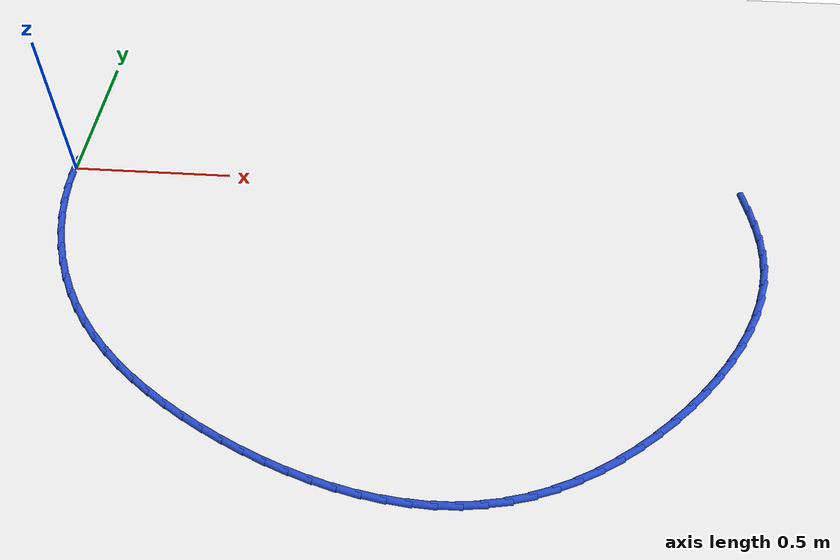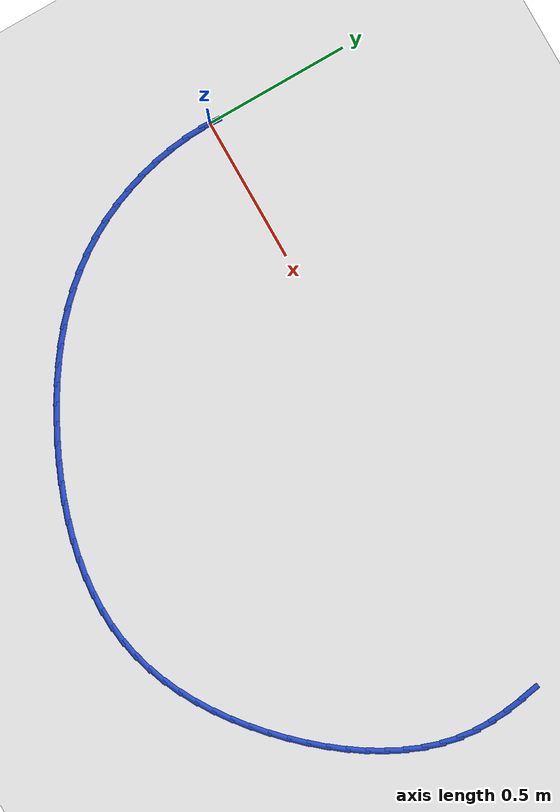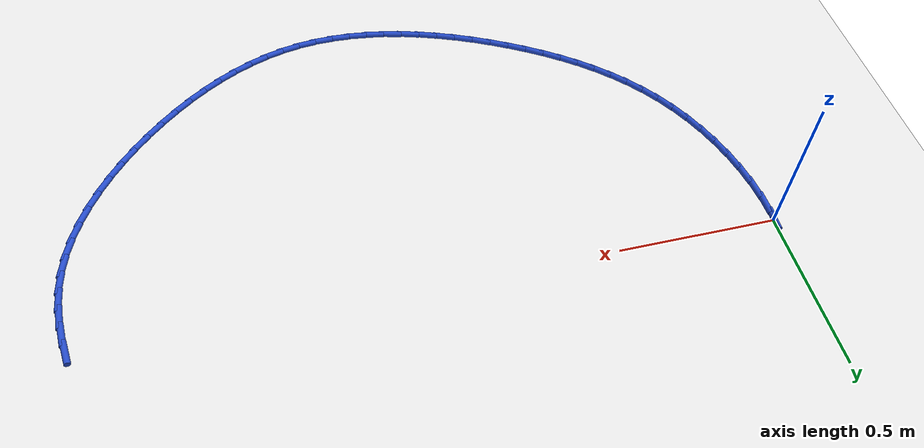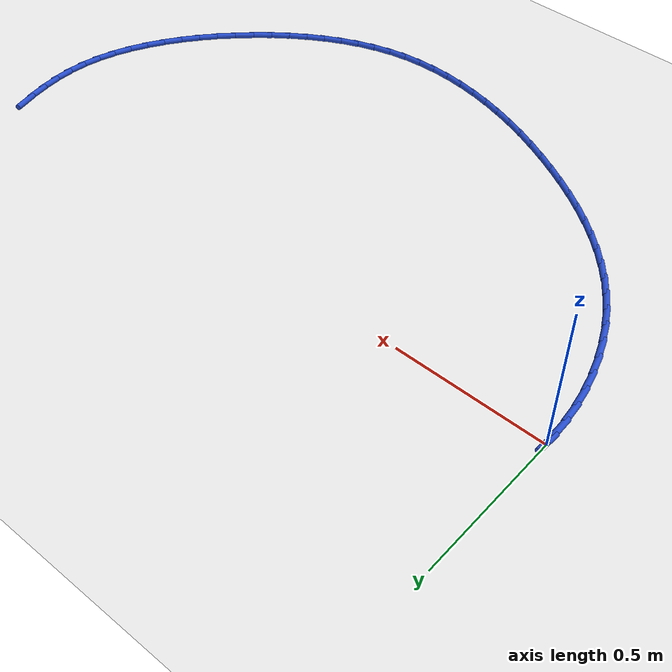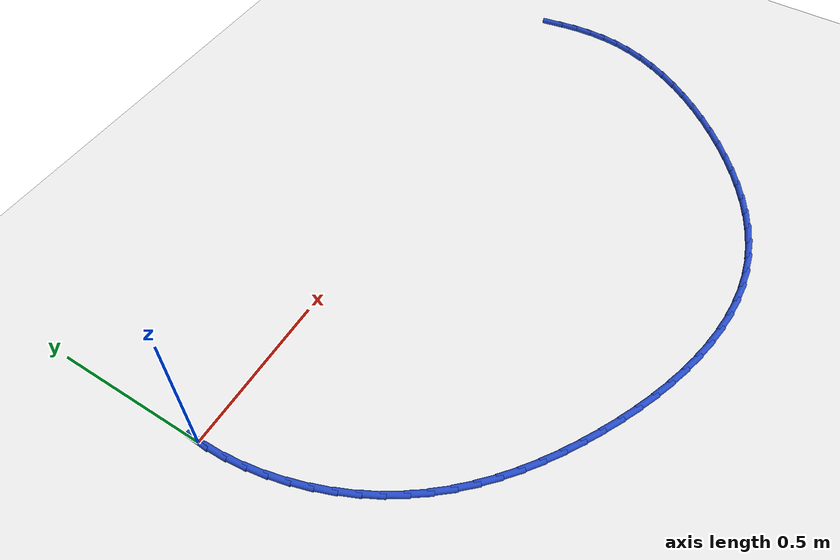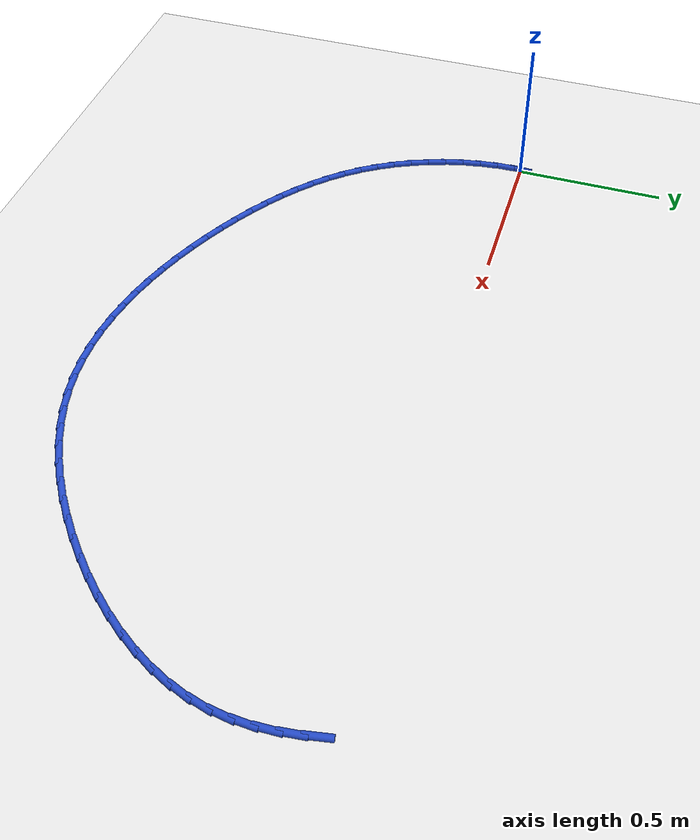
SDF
<sdf version="1.6">
 <world name="default">
  <model name="ground_plane">
   <static>1</static>
   <link name="link">
    <collision name="collision">
     <geometry><plane><normal>0 0 1</normal><size>100 100</size></plane></geometry>
     <surface><friction><ode><mu>100</mu><mu2>50</mu2></ode></friction></surface>
    </collision>
    <visual name="visual">
     <cast_shadows>0</cast_shadows>
     <geometry><plane><normal>0 0 1</normal><size>100 100</size></plane></geometry>
     <material>
      <script><uri>file://media/materials/scripts/gazebo.material</uri><name>Gazebo/WhiteGlow</name></script>
     </material>
    </visual>
   </link>
  </model>
  <model name="line">
   <link name="link_0">
    <pose>-4.163336342344337e-17 -9.71445146547012e-17 0.01 0 1.57 1.5214863195280521</pose>
    <collision name="collision">
     <geometry><cylinder><radius>0.01</radius><length>0.08</length></cylinder></geometry>
    </collision>
    <visual name="visual">
     <material>
      <script><name>Gazebo/Blue</name><uri>file://media/materials/scripts/gazebo.material</uri></script>
     </material>
     <geometry><cylinder><radius>0.01</radius><length>0.08</length></cylinder></geometry>
    </visual>
   </link>
   <link name="link_56">
    <pose>2.1243279045903054 -0.02235279379058367 0.01 0 1.57 -1.3953828920066031</pose>
    <collision name="collision">
     <geometry><cylinder><radius>0.01</radius><length>0.08</length></cylinder></geometry>
    </collision>
    <visual name="visual">
     <material>
      <script><name>Gazebo/Blue</name><uri>file://media/materials/scripts/gazebo.material</uri></script>
     </material>
     <geometry><cylinder><radius>0.01</radius><length>0.08</length></cylinder></geometry>
    </visual>
   </link>
   <link name="link_57">
    <pose>2.1348627377969445 -0.08179270551286004 0.01 0 1.57 -1.4587029891030252</pose>
    <collision name="collision">
     <geometry><cylinder><radius>0.01</radius><length>0.08</length></cylinder></geometry>
    </collision>
    <visual name="visual">
     <material>
      <script><name>Gazebo/Blue</name><uri>file://media/materials/scripts/gazebo.material</uri></script>
     </material>
     <geometry><cylinder><radius>0.01</radius><length>0.08</length></cylinder></geometry>
    </visual>
   </link>
   <link name="link_58">
    <pose>2.1415077284583637 -0.14082508161987517 0.01 0 1.57 -1.5339866785847238</pose>
    <collision name="collision">
     <geometry><cylinder><radius>0.01</radius><length>0.08</length></cylinder></geometry>
    </collision>
    <visual name="visual">
     <material>
      <script><name>Gazebo/Blue</name><uri>file://media/materials/scripts/gazebo.material</uri></script>
     </material>
     <geometry><cylinder><radius>0.01</radius><length>0.08</length></cylinder></geometry>
    </visual>
   </link>
   <link name="link_59">
    <pose>2.1436676674122017 -0.19947718600310327 0.01 0 1.57 1.5207460998094156</pose>
    <collision name="collision">
     <geometry><cylinder><radius>0.01</radius><length>0.08</length></cylinder></geometry>
    </collision>
    <visual name="visual">
     <material>
      <script><name>Gazebo/Blue</name><uri>file://media/materials/scripts/gazebo.material</uri></script>
     </material>
     <geometry><cylinder><radius>0.01</radius><length>0.08</length></cylinder></geometry>
    </visual>
   </link>
   <link name="link_60">
    <pose>2.140747345496099 -0.2577762825540158 0.01 0 1.57 1.4237009385239683</pose>
    <collision name="collision">
     <geometry><cylinder><radius>0.01</radius><length>0.08</length></cylinder></geometry>
    </collision>
    <visual name="visual">
     <material>
      <script><name>Gazebo/Blue</name><uri>file://media/materials/scripts/gazebo.material</uri></script>
     </material>
     <geometry><cylinder><radius>0.01</radius><length>0.08</length></cylinder></geometry>
    </visual>
   </link>
   <link name="link_61">
    <pose>2.1321579112309026 -0.315748152401936 0.01 0 1.57 1.3247202988558018</pose>
    <collision name="collision">
     <geometry><cylinder><radius>0.01</radius><length>0.08</length></cylinder></geometry>
    </collision>
    <visual name="visual">
     <material>
      <script><name>Gazebo/Blue</name><uri>file://media/materials/scripts/gazebo.material</uri></script>
     </material>
     <geometry><cylinder><radius>0.01</radius><length>0.08</length></cylinder></geometry>
    </visual>
   </link>
   <link name="link_62">
    <pose>2.1176956036454815 -0.3733287644581993 0.01 0 1.57 1.2341998890114867</pose>
    <collision name="collision">
     <geometry><cylinder><radius>0.01</radius><length>0.08</length></cylinder></geometry>
    </collision>
    <visual name="visual">
     <material>
      <script><name>Gazebo/Blue</name><uri>file://media/materials/scripts/gazebo.material</uri></script>
     </material>
     <geometry><cylinder><radius>0.01</radius><length>0.08</length></cylinder></geometry>
    </visual>
   </link>
   <link name="link_63">
    <pose>2.097755648434597 -0.4303143897712099 0.01 0 1.57 1.1525123572392821</pose>
    <collision name="collision">
     <geometry><cylinder><radius>0.01</radius><length>0.08</length></cylinder></geometry>
    </collision>
    <visual name="visual">
     <material>
      <script><name>Gazebo/Blue</name><uri>file://media/materials/scripts/gazebo.material</uri></script>
     </material>
     <geometry><cylinder><radius>0.01</radius><length>0.08</length></cylinder></geometry>
    </visual>
   </link>
   <link name="link_64">
    <pose>2.072785042827551 -0.48648922504256364 0.01 0 1.57 1.0788384101998991</pose>
    <collision name="collision">
     <geometry><cylinder><radius>0.01</radius><length>0.08</length></cylinder></geometry>
    </collision>
    <visual name="visual">
     <material>
      <script><name>Gazebo/Blue</name><uri>file://media/materials/scripts/gazebo.material</uri></script>
     </material>
     <geometry><cylinder><radius>0.01</radius><length>0.08</length></cylinder></geometry>
    </visual>
   </link>
   <link name="link_65">
    <pose>2.0432307840536406 -0.5416374669738587 0.01 0 1.57 1.0122001943229748</pose>
    <collision name="collision">
     <geometry><cylinder><radius>0.01</radius><length>0.08</length></cylinder></geometry>
    </collision>
    <visual name="visual">
     <material>
      <script><name>Gazebo/Blue</name><uri>file://media/materials/scripts/gazebo.material</uri></script>
     </material>
     <geometry><cylinder><radius>0.01</radius><length>0.08</length></cylinder></geometry>
    </visual>
   </link>
   <link name="link_66">
    <pose>2.009539869342166 -0.595543312266693 0.01 0 1.57 0.9515832576468713</pose>
    <collision name="collision">
     <geometry><cylinder><radius>0.01</radius><length>0.08</length></cylinder></geometry>
    </collision>
    <visual name="visual">
     <material>
      <script><name>Gazebo/Blue</name><uri>file://media/materials/scripts/gazebo.material</uri></script>
     </material>
     <geometry><cylinder><radius>0.01</radius><length>0.08</length></cylinder></geometry>
    </visual>
   </link>
   <link name="link_67">
    <pose>1.9721592959224274 -0.6479909576226626 0.01 0 1.57 0.8960034920960782</pose>
    <collision name="collision">
     <geometry><cylinder><radius>0.01</radius><length>0.08</length></cylinder></geometry>
    </collision>
    <visual name="visual">
     <material>
      <script><name>Gazebo/Blue</name><uri>file://media/materials/scripts/gazebo.material</uri></script>
     </material>
     <geometry><cylinder><radius>0.01</radius><length>0.08</length></cylinder></geometry>
    </visual>
   </link>
   <link name="link_68">
    <pose>1.9315360610237233 -0.6987645997433658 0.01 0 1.57 0.844535784874697</pose>
    <collision name="collision">
     <geometry><cylinder><radius>0.01</radius><length>0.08</length></cylinder></geometry>
    </collision>
    <visual name="visual">
     <material>
      <script><name>Gazebo/Blue</name><uri>file://media/materials/scripts/gazebo.material</uri></script>
     </material>
     <geometry><cylinder><radius>0.01</radius><length>0.08</length></cylinder></geometry>
    </visual>
   </link>
   <link name="link_69">
    <pose>1.8881171618753547 -0.7476484353303994 0.01 0 1.57 0.7963183726350038</pose>
    <collision name="collision">
     <geometry><cylinder><radius>0.01</radius><length>0.08</length></cylinder></geometry>
    </collision>
    <visual name="visual">
     <material>
      <script><name>Gazebo/Blue</name><uri>file://media/materials/scripts/gazebo.material</uri></script>
     </material>
     <geometry><cylinder><radius>0.01</radius><length>0.08</length></cylinder></geometry>
    </visual>
   </link>
   <link name="link_70">
    <pose>1.8423495957066196 -0.7944266610853612 0.01 0 1.57 0.7502204640533922</pose>
    <collision name="collision">
     <geometry><cylinder><radius>0.01</radius><length>0.08</length></cylinder></geometry>
    </collision>
    <visual name="visual">
     <material>
      <script><name>Gazebo/Blue</name><uri>file://media/materials/scripts/gazebo.material</uri></script>
     </material>
     <geometry><cylinder><radius>0.01</radius><length>0.08</length></cylinder></geometry>
    </visual>
   </link>
   <link name="link_71">
    <pose>1.7946560240762262 -0.8388774677604266 0.01 0 1.57 0.7027018645227558</pose>
    <collision name="collision">
     <geometry><cylinder><radius>0.01</radius><length>0.08</length></cylinder></geometry>
    </collision>
    <visual name="visual">
     <material>
      <script><name>Gazebo/Blue</name><uri>file://media/materials/scripts/gazebo.material</uri></script>
     </material>
     <geometry><cylinder><radius>0.01</radius><length>0.08</length></cylinder></geometry>
    </visual>
   </link>
   <link name="link_72">
    <pose>1.7452434732153075 -0.8807258281425704 0.01 0 1.57 0.6517905637498506</pose>
    <collision name="collision">
     <geometry><cylinder><radius>0.01</radius><length>0.08</length></cylinder></geometry>
    </collision>
    <visual name="visual">
     <material>
      <script><name>Gazebo/Blue</name><uri>file://media/materials/scripts/gazebo.material</uri></script>
     </material>
     <geometry><cylinder><radius>0.01</radius><length>0.08</length></cylinder></geometry>
    </visual>
   </link>
   <link name="link_73">
    <pose>1.6942062976735612 -0.9196689080833738 0.01 0 1.57 0.597023054765728</pose>
    <collision name="collision">
     <geometry><cylinder><radius>0.01</radius><length>0.08</length></cylinder></geometry>
    </collision>
    <visual name="visual">
     <material>
      <script><name>Gazebo/Blue</name><uri>file://media/materials/scripts/gazebo.material</uri></script>
     </material>
     <geometry><cylinder><radius>0.01</radius><length>0.08</length></cylinder></geometry>
    </visual>
   </link>
   <link name="link_74">
    <pose>1.6416378706844752 -0.9554036312493726 0.01 0 1.57 0.5379584692858022</pose>
    <collision name="collision">
     <geometry><cylinder><radius>0.01</radius><length>0.08</length></cylinder></geometry>
    </collision>
    <visual name="visual">
     <material>
      <script><name>Gazebo/Blue</name><uri>file://media/materials/scripts/gazebo.material</uri></script>
     </material>
     <geometry><cylinder><radius>0.01</radius><length>0.08</length></cylinder></geometry>
    </visual>
   </link>
   <link name="link_75">
    <pose>1.5876315654815403 -0.9876269213071013 0.01 0 1.57 0.47419100969769523</pose>
    <collision name="collision">
     <geometry><cylinder><radius>0.01</radius><length>0.08</length></cylinder></geometry>
    </collision>
    <visual name="visual">
     <material>
      <script><name>Gazebo/Blue</name><uri>file://media/materials/scripts/gazebo.material</uri></script>
     </material>
     <geometry><cylinder><radius>0.01</radius><length>0.08</length></cylinder></geometry>
    </visual>
   </link>
   <link name="link_76">
    <pose>1.532280755298245 -1.0160357019230966 0.01 0 1.57 0.40538751093271314</pose>
    <collision name="collision">
     <geometry><cylinder><radius>0.01</radius><length>0.08</length></cylinder></geometry>
    </collision>
    <visual name="visual">
     <material>
      <script><name>Gazebo/Blue</name><uri>file://media/materials/scripts/gazebo.material</uri></script>
     </material>
     <geometry><cylinder><radius>0.01</radius><length>0.08</length></cylinder></geometry>
    </visual>
   </link>
   <link name="link_77">
    <pose>1.4756788133680805 -1.0403268967638937 0.01 0 1.57 0.3313381522095739</pose>
    <collision name="collision">
     <geometry><cylinder><radius>0.01</radius><length>0.08</length></cylinder></geometry>
    </collision>
    <visual name="visual">
     <material>
      <script><name>Gazebo/Blue</name><uri>file://media/materials/scripts/gazebo.material</uri></script>
     </material>
     <geometry><cylinder><radius>0.01</radius><length>0.08</length></cylinder></geometry>
    </visual>
   </link>
   <link name="link_78">
    <pose>1.4179191129245357 -1.060197429496028 0.01 0 1.57 0.25201843403457663</pose>
    <collision name="collision">
     <geometry><cylinder><radius>0.01</radius><length>0.08</length></cylinder></geometry>
    </collision>
    <visual name="visual">
     <material>
      <script><name>Gazebo/Blue</name><uri>file://media/materials/scripts/gazebo.material</uri></script>
     </material>
     <geometry><cylinder><radius>0.01</radius><length>0.08</length></cylinder></geometry>
    </visual>
   </link>
   <link name="link_79">
    <pose>1.3590950272011006 -1.0753442237860351 0.01 0 1.57 0.1683562036929036</pose>
    <collision name="collision">
     <geometry><cylinder><radius>0.01</radius><length>0.08</length></cylinder></geometry>
    </collision>
    <visual name="visual">
     <material>
      <script><name>Gazebo/Blue</name><uri>file://media/materials/scripts/gazebo.material</uri></script>
     </material>
     <geometry><cylinder><radius>0.01</radius><length>0.08</length></cylinder></geometry>
    </visual>
   </link>
   <link name="link_80">
    <pose>1.299307053754539 -1.0855060906085239 0.01 0 1.57 0.0867566546462339</pose>
    <collision name="collision">
     <geometry><cylinder><radius>0.01</radius><length>0.08</length></cylinder></geometry>
    </collision>
    <visual name="visual">
     <material>
      <script><name>Gazebo/Blue</name><uri>file://media/materials/scripts/gazebo.material</uri></script>
     </material>
     <geometry><cylinder><radius>0.01</radius><length>0.08</length></cylinder></geometry>
    </visual>
   </link>
   <link name="link_81">
    <pose>1.23871592702422 -1.090776002415874 0.01 0 1.57 0.010603007316863386</pose>
    <collision name="collision">
     <geometry><cylinder><radius>0.01</radius><length>0.08</length></cylinder></geometry>
    </collision>
    <visual name="visual">
     <material>
      <script><name>Gazebo/Blue</name><uri>file://media/materials/scripts/gazebo.material</uri></script>
     </material>
     <geometry><cylinder><radius>0.01</radius><length>0.08</length></cylinder></geometry>
    </visual>
   </link>
   <link name="link_82">
    <pose>1.1775126619805867 -1.0914249654027504 0.01 0 1.57 -0.05996345137059453</pose>
    <collision name="collision">
     <geometry><cylinder><radius>0.01</radius><length>0.08</length></cylinder></geometry>
    </collision>
    <visual name="visual">
     <material>
      <script><name>Gazebo/Blue</name><uri>file://media/materials/scripts/gazebo.material</uri></script>
     </material>
     <geometry><cylinder><radius>0.01</radius><length>0.08</length></cylinder></geometry>
    </visual>
   </link>
   <link name="link_83">
    <pose>1.115888502720966 -1.0877253329104897 0.01 0 1.57 -0.12505770672759317</pose>
    <collision name="collision">
     <geometry><cylinder><radius>0.01</radius><length>0.08</length></cylinder></geometry>
    </collision>
    <visual name="visual">
     <material>
      <script><name>Gazebo/Blue</name><uri>file://media/materials/scripts/gazebo.material</uri></script>
     </material>
     <geometry><cylinder><radius>0.01</radius><length>0.08</length></cylinder></geometry>
    </visual>
   </link>
   <link name="link_84">
    <pose>1.0540346933426878 -1.0799494582804297 0.01 0 1.57 -0.18495729087659887</pose>
    <collision name="collision">
     <geometry><cylinder><radius>0.01</radius><length>0.08</length></cylinder></geometry>
    </collision>
    <visual name="visual">
     <material>
      <script><name>Gazebo/Blue</name><uri>file://media/materials/scripts/gazebo.material</uri></script>
     </material>
     <geometry><cylinder><radius>0.01</radius><length>0.08</length></cylinder></geometry>
    </visual>
   </link>
   <link name="link_85">
    <pose>0.9921424779430792 -1.0683696948539068 0.01 0 1.57 -0.2400403750271218</pose>
    <collision name="collision">
     <geometry><cylinder><radius>0.01</radius><length>0.08</length></cylinder></geometry>
    </collision>
    <visual name="visual">
     <material>
      <script><name>Gazebo/Blue</name><uri>file://media/materials/scripts/gazebo.material</uri></script>
     </material>
     <geometry><cylinder><radius>0.01</radius><length>0.08</length></cylinder></geometry>
    </visual>
   </link>
   <link name="link_86">
    <pose>0.930403100619469 -1.0532583959722583 0.01 0 1.57 -0.2907377674043188</pose>
    <collision name="collision">
     <geometry><cylinder><radius>0.01</radius><length>0.08</length></cylinder></geometry>
    </collision>
    <visual name="visual">
     <material>
      <script><name>Gazebo/Blue</name><uri>file://media/materials/scripts/gazebo.material</uri></script>
     </material>
     <geometry><cylinder><radius>0.01</radius><length>0.08</length></cylinder></geometry>
    </visual>
   </link>
   <link name="link_87">
    <pose>0.8690078054691843 -1.034887914976822 0.01 0 1.57 -0.33749900354953755</pose>
    <collision name="collision">
     <geometry><cylinder><radius>0.01</radius><length>0.08</length></cylinder></geometry>
    </collision>
    <visual name="visual">
     <material>
      <script><name>Gazebo/Blue</name><uri>file://media/materials/scripts/gazebo.material</uri></script>
     </material>
     <geometry><cylinder><radius>0.01</radius><length>0.08</length></cylinder></geometry>
    </visual>
   </link>
   <link name="link_88">
    <pose>0.8081478365895547 -1.0135306052089346 0.01 0 1.57 -0.38077050033383353</pose>
    <collision name="collision">
     <geometry><cylinder><radius>0.01</radius><length>0.08</length></cylinder></geometry>
    </collision>
    <visual name="visual">
     <material>
      <script><name>Gazebo/Blue</name><uri>file://media/materials/scripts/gazebo.material</uri></script>
     </material>
     <geometry><cylinder><radius>0.01</radius><length>0.08</length></cylinder></geometry>
    </visual>
   </link>
   <link name="link_89">
    <pose>0.7480144380779066 -0.9894588200099328 0.01 0 1.57 -0.4209830718205509</pose>
    <collision name="collision">
     <geometry><cylinder><radius>0.01</radius><length>0.08</length></cylinder></geometry>
    </collision>
    <visual name="visual">
     <material>
      <script><name>Gazebo/Blue</name><uri>file://media/materials/scripts/gazebo.material</uri></script>
     </material>
     <geometry><cylinder><radius>0.01</radius><length>0.08</length></cylinder></geometry>
    </visual>
   </link>
   <link name="link_90">
    <pose>0.6887988540315695 -0.9629449127211542 0.01 0 1.57 -0.45854627225885314</pose>
    <collision name="collision">
     <geometry><cylinder><radius>0.01</radius><length>0.08</length></cylinder></geometry>
    </collision>
    <visual name="visual">
     <material>
      <script><name>Gazebo/Blue</name><uri>file://media/materials/scripts/gazebo.material</uri></script>
     </material>
     <geometry><cylinder><radius>0.01</radius><length>0.08</length></cylinder></geometry>
    </visual>
   </link>
   <link name="link_91">
    <pose>0.6306923285478705 -0.9342612366839357 0.01 0 1.57 -0.4938540625784785</pose>
    <collision name="collision">
     <geometry><cylinder><radius>0.01</radius><length>0.08</length></cylinder></geometry>
    </collision>
    <visual name="visual">
     <material>
      <script><name>Gazebo/Blue</name><uri>file://media/materials/scripts/gazebo.material</uri></script>
     </material>
     <geometry><cylinder><radius>0.01</radius><length>0.08</length></cylinder></geometry>
    </visual>
   </link>
   <link name="link_92">
    <pose>0.5738861305383975 -0.9036796811236935 0.01 0 1.57 -0.5288290102786806</pose>
    <collision name="collision">
     <geometry><cylinder><radius>0.01</radius><length>0.08</length></cylinder></geometry>
    </collision>
    <visual name="visual">
     <material>
      <script><name>Gazebo/Blue</name><uri>file://media/materials/scripts/gazebo.material</uri></script>
     </material>
     <geometry><cylinder><radius>0.01</radius><length>0.08</length></cylinder></geometry>
    </visual>
   </link>
   <link name="link_93">
    <pose>0.5185775052199033 -0.8713603568564906 0.01 0 1.57 -0.5673150859602458</pose>
    <collision name="collision">
     <geometry><cylinder><radius>0.01</radius><length>0.08</length></cylinder></geometry>
    </collision>
    <visual name="visual">
     <material>
      <script><name>Gazebo/Blue</name><uri>file://media/materials/scripts/gazebo.material</uri></script>
     </material>
     <geometry><cylinder><radius>0.01</radius><length>0.08</length></cylinder></geometry>
    </visual>
   </link>
   <link name="link_94">
    <pose>0.464977401616732 -0.8372070641902168 0.01 0 1.57 -0.6100000944035938</pose>
    <collision name="collision">
     <geometry><cylinder><radius>0.01</radius><length>0.08</length></cylinder></geometry>
    </collision>
    <visual name="visual">
     <material>
      <script><name>Gazebo/Blue</name><uri>file://media/materials/scripts/gazebo.material</uri></script>
     </material>
     <geometry><cylinder><radius>0.01</radius><length>0.08</length></cylinder></geometry>
    </visual>
   </link>
   <link name="link_95">
    <pose>0.4132986816817063 -0.8010878247874561 0.01 0 1.57 -0.6570387633730753</pose>
    <collision name="collision">
     <geometry><cylinder><radius>0.01</radius><length>0.08</length></cylinder></geometry>
    </collision>
    <visual name="visual">
     <material>
      <script><name>Gazebo/Blue</name><uri>file://media/materials/scripts/gazebo.material</uri></script>
     </material>
     <geometry><cylinder><radius>0.01</radius><length>0.08</length></cylinder></geometry>
    </visual>
   </link>
   <link name="link_96">
    <pose>0.3637542073676511 -0.7628706603107929 0.01 0 1.57 -0.7085307762878117</pose>
    <collision name="collision">
     <geometry><cylinder><radius>0.01</radius><length>0.08</length></cylinder></geometry>
    </collision>
    <visual name="visual">
     <material>
      <script><name>Gazebo/Blue</name><uri>file://media/materials/scripts/gazebo.material</uri></script>
     </material>
     <geometry><cylinder><radius>0.01</radius><length>0.08</length></cylinder></geometry>
    </visual>
   </link>
   <link name="link_97">
    <pose>0.3165568406273896 -0.7224235924228123 0.01 0 1.57 -0.7644918448838081</pose>
    <collision name="collision">
     <geometry><cylinder><radius>0.01</radius><length>0.08</length></cylinder></geometry>
    </collision>
    <visual name="visual">
     <material>
      <script><name>Gazebo/Blue</name><uri>file://media/materials/scripts/gazebo.material</uri></script>
     </material>
     <geometry><cylinder><radius>0.01</radius><length>0.08</length></cylinder></geometry>
    </visual>
   </link>
   <link name="link_98">
    <pose>0.27191944341374524 -0.6796146427860974 0.01 0 1.57 -0.8248218871480887</pose>
    <collision name="collision">
     <geometry><cylinder><radius>0.01</radius><length>0.08</length></cylinder></geometry>
    </collision>
    <visual name="visual">
     <material>
      <script><name>Gazebo/Blue</name><uri>file://media/materials/scripts/gazebo.material</uri></script>
     </material>
     <geometry><cylinder><radius>0.01</radius><length>0.08</length></cylinder></geometry>
    </visual>
   </link>
   <link name="link_99">
    <pose>0.2300548776795427 -0.6343118330632341 0.01 0 1.57 -0.889273988533903</pose>
    <collision name="collision">
     <geometry><cylinder><radius>0.01</radius><length>0.08</length></cylinder></geometry>
    </collision>
    <visual name="visual">
     <material>
      <script><name>Gazebo/Blue</name><uri>file://media/materials/scripts/gazebo.material</uri></script>
     </material>
     <geometry><cylinder><radius>0.01</radius><length>0.08</length></cylinder></geometry>
    </visual>
   </link>
   <link name="link_100">
    <pose>0.19117600537760496 -0.5863831849168057 0.01 0 1.57 -0.9574289057286994</pose>
    <collision name="collision">
     <geometry><cylinder><radius>0.01</radius><length>0.08</length></cylinder></geometry>
    </collision>
    <visual name="visual">
     <material>
      <script><name>Gazebo/Blue</name><uri>file://media/materials/scripts/gazebo.material</uri></script>
     </material>
     <geometry><cylinder><radius>0.01</radius><length>0.08</length></cylinder></geometry>
    </visual>
   </link>
   <link name="link_101">
    <pose>0.15549567309333862 -0.5356967959418288 0.01 0 1.57 -1.027410797272005</pose>
    <collision name="collision">
     <geometry><cylinder><radius>0.01</radius><length>0.08</length></cylinder></geometry>
    </collision>
    <visual name="visual">
     <material>
      <script><name>Gazebo/Blue</name><uri>file://media/materials/scripts/gazebo.material</uri></script>
     </material>
     <geometry><cylinder><radius>0.01</radius><length>0.08</length></cylinder></geometry>
    </visual>
   </link>
   <link name="link_102">
    <pose>0.12320334401573918 -0.48223630416509966 0.01 0 1.57 -1.0952852487123586</pose>
    <collision name="collision">
     <geometry><cylinder><radius>0.01</radius><length>0.08</length></cylinder></geometry>
    </collision>
    <visual name="visual">
     <material>
      <script><name>Gazebo/Blue</name><uri>file://media/materials/scripts/gazebo.material</uri></script>
     </material>
     <geometry><cylinder><radius>0.01</radius><length>0.08</length></cylinder></geometry>
    </visual>
   </link>
   <link name="link_103">
    <pose>0.0944180023884604 -0.4263335933358952 0.01 0 1.57 -1.1609891344186045</pose>
    <collision name="collision">
     <geometry><cylinder><radius>0.01</radius><length>0.08</length></cylinder></geometry>
    </collision>
    <visual name="visual">
     <material>
      <script><name>Gazebo/Blue</name><uri>file://media/materials/scripts/gazebo.material</uri></script>
     </material>
     <geometry><cylinder><radius>0.01</radius><length>0.08</length></cylinder></geometry>
    </visual>
   </link>
   <link name="link_104">
    <pose>0.0692454070257102 -0.3683858957868079 0.01 0 1.57 -1.225244792817984</pose>
    <collision name="collision">
     <geometry><cylinder><radius>0.01</radius><length>0.08</length></cylinder></geometry>
    </collision>
    <visual name="visual">
     <material>
      <script><name>Gazebo/Blue</name><uri>file://media/materials/scripts/gazebo.material</uri></script>
     </material>
     <geometry><cylinder><radius>0.01</radius><length>0.08</length></cylinder></geometry>
    </visual>
   </link>
   <link name="link_105">
    <pose>0.047791316741697794 -0.3087904438504325 0.01 0 1.57 -1.2887739925881598</pose>
    <collision name="collision">
     <geometry><cylinder><radius>0.01</radius><length>0.08</length></cylinder></geometry>
    </collision>
    <visual name="visual">
     <material>
      <script><name>Gazebo/Blue</name><uri>file://media/materials/scripts/gazebo.material</uri></script>
     </material>
     <geometry><cylinder><radius>0.01</radius><length>0.08</length></cylinder></geometry>
    </visual>
   </link>
   <link name="link_106">
    <pose>0.030161490350631294 -0.2479444698593615 0.01 0 1.57 -1.3522995029019236</pose>
    <collision name="collision">
     <geometry><cylinder><radius>0.01</radius><length>0.08</length></cylinder></geometry>
    </collision>
    <visual name="visual">
     <material>
      <script><name>Gazebo/Blue</name><uri>file://media/materials/scripts/gazebo.material</uri></script>
     </material>
     <geometry><cylinder><radius>0.01</radius><length>0.08</length></cylinder></geometry>
    </visual>
   </link>
   <link name="link_107">
    <pose>0.016461686666719794 -0.1862452061461897 0.01 0 1.57 -1.4165495496456535</pose>
    <collision name="collision">
     <geometry><cylinder><radius>0.01</radius><length>0.08</length></cylinder></geometry>
    </collision>
    <visual name="visual">
     <material>
      <script><name>Gazebo/Blue</name><uri>file://media/materials/scripts/gazebo.material</uri></script>
     </material>
     <geometry><cylinder><radius>0.01</radius><length>0.08</length></cylinder></geometry>
    </visual>
   </link>
   <link name="link_108">
    <pose>0.006797664504171554 -0.12408988504350935 0.01 0 1.57 -1.482262675916956</pose>
    <collision name="collision">
     <geometry><cylinder><radius>0.01</radius><length>0.08</length></cylinder></geometry>
    </collision>
    <visual name="visual">
     <material>
      <script><name>Gazebo/Blue</name><uri>file://media/materials/scripts/gazebo.material</uri></script>
     </material>
     <geometry><cylinder><radius>0.01</radius><length>0.08</length></cylinder></geometry>
    </visual>
   </link>
   <link name="link_109">
    <pose>0.0012751826771954522 -0.061875738883915496 0.01 0 1.57 -1.5501904768481773</pose>
    <collision name="collision">
     <geometry><cylinder><radius>0.01</radius><length>0.08</length></cylinder></geometry>
    </collision>
    <visual name="visual">
     <material>
      <script><name>Gazebo/Blue</name><uri>file://media/materials/scripts/gazebo.material</uri></script>
     </material>
     <geometry><cylinder><radius>0.01</radius><length>0.08</length></cylinder></geometry>
    </visual>
   </link>
   <link name="link_110">
    <pose>-2.42861286636753e-17 -2.220446049250313e-16 0.01 0 1.57 1.5204974356806633</pose>
    <collision name="collision">
     <geometry><cylinder><radius>0.01</radius><length>0.08</length></cylinder></geometry>
    </collision>
    <visual name="visual">
     <material>
      <script><name>Gazebo/Blue</name><uri>file://media/materials/scripts/gazebo.material</uri></script>
     </material>
     <geometry><cylinder><radius>0.01</radius><length>0.08</length></cylinder></geometry>
    </visual>
   </link>
  </model>
 </world>
</sdf>
